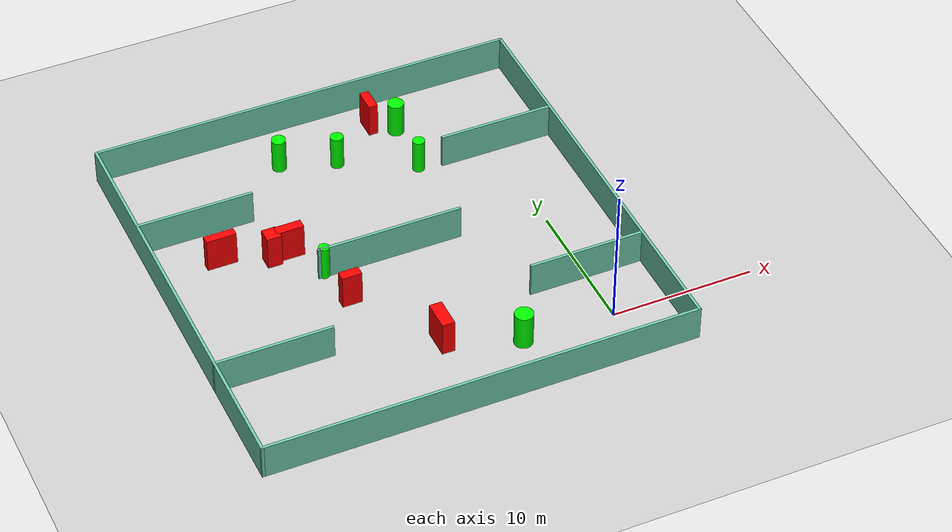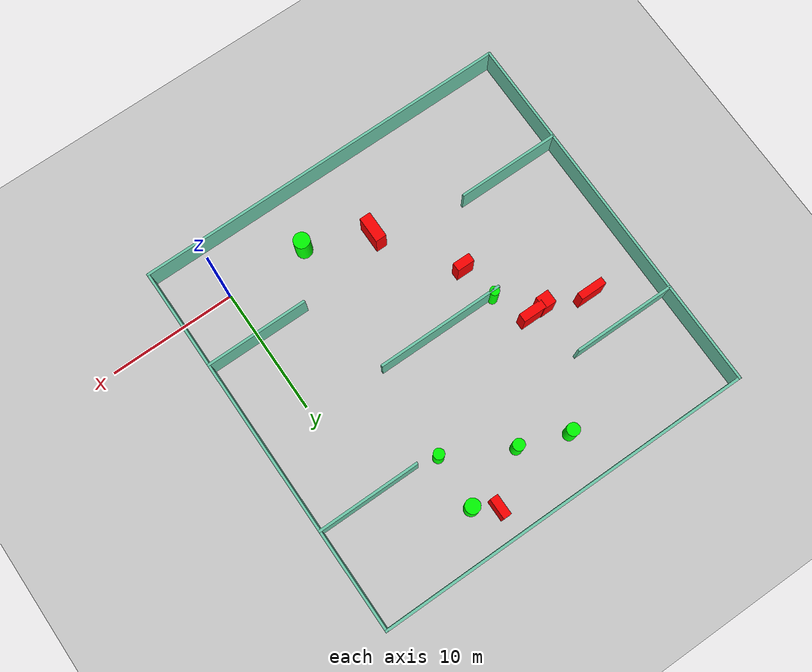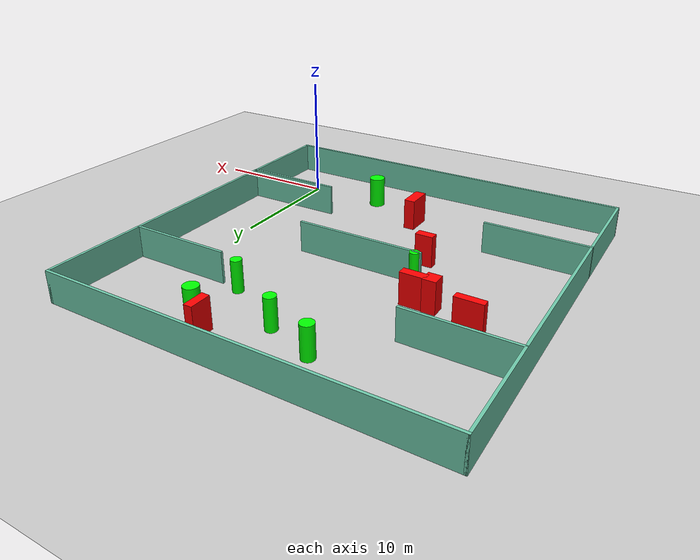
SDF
<sdf version="1.7">
 <world name="default">
  <light name="sun" type="directional">
   <pose>0 0 10 0 -0 0</pose>
   <diffuse>0.8 0.8 0.8 1</diffuse>
   <specular>0.2 0.2 0.2 1</specular>
   <attenuation>
    <range>1000</range>
    <constant>0.9</constant>
    <linear>0.01</linear>
    <quadratic>0.001</quadratic>
   </attenuation>
   <direction>-0.5 0.1 -0.9</direction>
   <spot><inner_angle>0</inner_angle><outer_angle>0</outer_angle><falloff>0</falloff></spot>
  </light>
  <model name="ground_plane">
   <static>1</static>
   <link name="link">
    <collision name="collision">
     <geometry><plane><normal>0 0 1</normal><size>100 100</size></plane></geometry>
     <surface>
      <contact><collide_bitmask>65535</collide_bitmask></contact>
      <friction><ode><mu>100</mu><mu2>50</mu2></ode></friction>
     </surface>
    </collision>
    <visual name="visual">
     <cast_shadows>0</cast_shadows>
     <geometry><plane><normal>0 0 1</normal><size>100 100</size></plane></geometry>
     <material>
      <script><uri>file://media/materials/scripts/gazebo.material</uri><name>Gazebo/Grey</name></script>
     </material>
    </visual>
   </link>
  </model>
  <gravity>0 0 -9.8</gravity>
  <magnetic_field>6e-06 2.3e-05 -4.2e-05</magnetic_field>
  <atmosphere type="adiabatic"/>
  <physics type="ode">
   <max_step_size>0.001</max_step_size>
   <real_time_factor>1</real_time_factor>
   <real_time_update_rate>1000</real_time_update_rate>
  </physics>
  <scene><ambient>0.4 0.4 0.4 1</ambient><background>0.7 0.7 0.7 1</background><shadows>1</shadows></scene>
  <spherical_coordinates>
   <surface_model>EARTH_WGS84</surface_model>
   <latitude_deg>0</latitude_deg>
   <longitude_deg>0</longitude_deg>
   <elevation>0</elevation>
   <heading_deg>0</heading_deg>
  </spherical_coordinates>
  <model name="my_base_walls">
   <link name="Wall_10">
    <collision name="Wall_10_Collision">
     <geometry><box><size>8.2 0.2 2.5</size></box></geometry>
     <pose>0 0 1.25 0 -0 0</pose>
    </collision>
    <visual name="Wall_10_Visual">
     <pose>0 0 1.25 0 -0 0</pose>
     <geometry><box><size>8.2 0.2 2.5</size></box></geometry>
     <material>
      <script><uri>file://media/materials/scripts/gazebo.material</uri><name>Gazebo/Grey</name></script>
      <ambient>0.435294 0.796078 0.67451 1</ambient>
     </material>
     <meta><layer>0</layer></meta>
    </visual>
    <pose>-11 -7 0 0 -0 0</pose>
   </link>
   <link name="Wall_12">
    <collision name="Wall_12_Collision">
     <geometry><box><size>8.2 0.2 2.5</size></box></geometry>
     <pose>0 0 1.25 0 -0 0</pose>
    </collision>
    <visual name="Wall_12_Visual">
     <pose>0 0 1.25 0 -0 0</pose>
     <geometry><box><size>8.2 0.2 2.5</size></box></geometry>
     <material>
      <script><uri>file://media/materials/scripts/gazebo.material</uri><name>Gazebo/Grey</name></script>
      <ambient>0.435294 0.796078 0.67451 1</ambient>
     </material>
     <meta><layer>0</layer></meta>
    </visual>
    <pose>-11 7 0 0 -0 0</pose>
   </link>
   <link name="Wall_14">
    <collision name="Wall_14_Collision">
     <geometry><box><size>8.2 0.2 2.5</size></box></geometry>
     <pose>0 0 1.25 0 -0 0</pose>
    </collision>
    <visual name="Wall_14_Visual">
     <pose>0 0 1.25 0 -0 0</pose>
     <geometry><box><size>8.2 0.2 2.5</size></box></geometry>
     <material>
      <script><uri>file://media/materials/scripts/gazebo.material</uri><name>Gazebo/Grey</name></script>
      <ambient>0.435294 0.796078 0.67451 1</ambient>
     </material>
     <meta><layer>0</layer></meta>
    </visual>
    <pose>11 7 0 0 -0 3.14159</pose>
   </link>
   <link name="Wall_16">
    <collision name="Wall_16_Collision">
     <geometry><box><size>10.2 0.2 2.5</size></box></geometry>
     <pose>0 0 1.25 0 -0 0</pose>
    </collision>
    <visual name="Wall_16_Visual">
     <pose>0 0 1.25 0 -0 0</pose>
     <geometry><box><size>10.2 0.2 2.5</size></box></geometry>
     <material>
      <script><uri>file://media/materials/scripts/gazebo.material</uri><name>Gazebo/Grey</name></script>
      <ambient>0.435294 0.796078 0.67451 1</ambient>
     </material>
     <meta><layer>0</layer></meta>
    </visual>
    <pose>0 0 0 0 -0 3.14159</pose>
   </link>
   <link name="Wall_2">
    <collision name="Wall_2_Collision">
     <geometry><box><size>30.2 0.2 2.5</size></box></geometry>
     <pose>0 0 1.25 0 -0 0</pose>
    </collision>
    <visual name="Wall_2_Visual">
     <pose>0 0 1.25 0 -0 0</pose>
     <geometry><box><size>30.2 0.2 2.5</size></box></geometry>
     <material>
      <script><uri>file://media/materials/scripts/gazebo.material</uri><name>Gazebo/Grey</name></script>
      <ambient>0.435294 0.796078 0.67451 1</ambient>
     </material>
     <meta><layer>0</layer></meta>
    </visual>
    <pose>0 -15 0 0 -0 3.14159</pose>
   </link>
   <link name="Wall_3">
    <collision name="Wall_3_Collision">
     <geometry><box><size>30.2 0.2 2.5</size></box></geometry>
     <pose>0 0 1.25 0 -0 0</pose>
    </collision>
    <visual name="Wall_3_Visual">
     <pose>0 0 1.25 0 -0 0</pose>
     <geometry><box><size>30.2 0.2 2.5</size></box></geometry>
     <material>
      <script><uri>file://media/materials/scripts/gazebo.material</uri><name>Gazebo/Grey</name></script>
      <ambient>0.435294 0.796078 0.67451 1</ambient>
     </material>
     <meta><layer>0</layer></meta>
    </visual>
    <pose>-15 0 0 0 -0 1.5708</pose>
   </link>
   <link name="Wall_4">
    <collision name="Wall_4_Collision">
     <geometry><box><size>30.2 0.2 2.5</size></box></geometry>
     <pose>0 0 1.25 0 -0 0</pose>
    </collision>
    <visual name="Wall_4_Visual">
     <pose>0 0 1.25 0 -0 0</pose>
     <geometry><box><size>30.2 0.2 2.5</size></box></geometry>
     <material>
      <script><uri>file://media/materials/scripts/gazebo.material</uri><name>Gazebo/Grey</name></script>
      <ambient>0.435294 0.796078 0.67451 1</ambient>
     </material>
     <meta><layer>0</layer></meta>
    </visual>
    <pose>0 15 0 0 -0 0</pose>
   </link>
   <link name="Wall_6">
    <collision name="Wall_6_Collision">
     <geometry><box><size>30.2 0.2 2.5</size></box></geometry>
     <pose>0 0 1.25 0 -0 0</pose>
    </collision>
    <visual name="Wall_6_Visual">
     <pose>0 0 1.25 0 -0 0</pose>
     <geometry><box><size>30.2 0.2 2.5</size></box></geometry>
     <material>
      <script><uri>file://media/materials/scripts/gazebo.material</uri><name>Gazebo/Grey</name></script>
      <ambient>0.435294 0.796078 0.67451 1</ambient>
     </material>
     <meta><layer>0</layer></meta>
    </visual>
    <pose>15 0 0 0 -0 1.5708</pose>
   </link>
   <link name="Wall_8">
    <collision name="Wall_8_Collision">
     <geometry><box><size>8.2 0.2 2.5</size></box></geometry>
     <pose>0 0 1.25 0 -0 0</pose>
    </collision>
    <visual name="Wall_8_Visual">
     <pose>0 0 1.25 0 -0 0</pose>
     <geometry><box><size>8.2 0.2 2.5</size></box></geometry>
     <material>
      <script><uri>file://media/materials/scripts/gazebo.material</uri><name>Gazebo/Grey</name></script>
      <ambient>0.435294 0.796078 0.67451 1</ambient>
     </material>
     <meta><layer>0</layer></meta>
    </visual>
    <pose>11 -7 0 0 -0 3.14159</pose>
   </link>
   <static>1</static>
   <pose>-11 11 0 0 -0 0</pose>
  </model>
  <model name="cylinder1">
   <static>1</static>
   <link name="link">
    <inertial>
     <mass>1</mass>
     <inertia><ixx>0.5</ixx><ixy>0</ixy><ixz>0</ixz><iyy>0.5</iyy><iyz>0</iyz><izz>1</izz></inertia>
    </inertial>
    <collision name="collision">
     <geometry><cylinder><radius>0.4205639386313128</radius><length>2.5</length></cylinder></geometry>
    </collision>
    <visual name="visual">
     <geometry><cylinder><radius>0.4205639386313128</radius><length>2.5</length></cylinder></geometry>
     <material>
      <ambient>0 1 0 1</ambient>
      <diffuse>0 1 0 1</diffuse>
      <specular>0.1 0.1 0.1 1</specular>
      <emissive>0 0 0 0</emissive>
     </material>
    </visual>
   </link>
   <pose>-5.664906811855879 18.342129336857866 1.25 0 0 0</pose>
  </model>
  <model name="cylinder2">
   <static>1</static>
   <link name="link">
    <inertial>
     <mass>1</mass>
     <inertia><ixx>0.5</ixx><ixy>0</ixy><ixz>0</ixz><iyy>0.5</iyy><iyz>0</iyz><izz>1</izz></inertia>
    </inertial>
    <collision name="collision">
     <geometry><cylinder><radius>0.36743642470945576</radius><length>2.5</length></cylinder></geometry>
    </collision>
    <visual name="visual">
     <geometry><cylinder><radius>0.36743642470945576</radius><length>2.5</length></cylinder></geometry>
     <material>
      <ambient>0 1 0 1</ambient>
      <diffuse>0 1 0 1</diffuse>
      <specular>0.1 0.1 0.1 1</specular>
      <emissive>0 0 0 0</emissive>
     </material>
    </visual>
   </link>
   <pose>-15.610635866786 11.11224617628008 1.25 0 0 0</pose>
  </model>
  <model name="cylinder3">
   <static>1</static>
   <link name="link">
    <inertial>
     <mass>1</mass>
     <inertia><ixx>0.5</ixx><ixy>0</ixy><ixz>0</ixz><iyy>0.5</iyy><iyz>0</iyz><izz>1</izz></inertia>
    </inertial>
    <collision name="collision">
     <geometry><cylinder><radius>0.6387010330572106</radius><length>2.5</length></cylinder></geometry>
    </collision>
    <visual name="visual">
     <geometry><cylinder><radius>0.6387010330572106</radius><length>2.5</length></cylinder></geometry>
     <material>
      <ambient>0 1 0 1</ambient>
      <diffuse>0 1 0 1</diffuse>
      <specular>0.1 0.1 0.1 1</specular>
      <emissive>0 0 0 0</emissive>
     </material>
    </visual>
   </link>
   <pose>-6.3981393806121325 0.1371236481526541 1.25 0 0 0</pose>
  </model>
  <model name="cylinder4">
   <static>1</static>
   <link name="link">
    <inertial>
     <mass>1</mass>
     <inertia><ixx>0.5</ixx><ixy>0</ixy><ixz>0</ixz><iyy>0.5</iyy><iyz>0</iyz><izz>1</izz></inertia>
    </inertial>
    <collision name="collision">
     <geometry><cylinder><radius>0.49794016591902346</radius><length>2.5</length></cylinder></geometry>
    </collision>
    <visual name="visual">
     <geometry><cylinder><radius>0.49794016591902346</radius><length>2.5</length></cylinder></geometry>
     <material>
      <ambient>0 1 0 1</ambient>
      <diffuse>0 1 0 1</diffuse>
      <specular>0.1 0.1 0.1 1</specular>
      <emissive>0 0 0 0</emissive>
     </material>
    </visual>
   </link>
   <pose>-14.29390490018737 22.278402033695755 1.25 0 0 0</pose>
  </model>
  <model name="cylinder5">
   <static>1</static>
   <link name="link">
    <inertial>
     <mass>1</mass>
     <inertia><ixx>0.5</ixx><ixy>0</ixy><ixz>0</ixz><iyy>0.5</iyy><iyz>0</iyz><izz>1</izz></inertia>
    </inertial>
    <collision name="collision">
     <geometry><cylinder><radius>0.45933887770734566</radius><length>2.5</length></cylinder></geometry>
    </collision>
    <visual name="visual">
     <geometry><cylinder><radius>0.45933887770734566</radius><length>2.5</length></cylinder></geometry>
     <material>
      <ambient>0 1 0 1</ambient>
      <diffuse>0 1 0 1</diffuse>
      <specular>0.1 0.1 0.1 1</specular>
      <emissive>0 0 0 0</emissive>
     </material>
    </visual>
   </link>
   <pose>-10.567849529596302 20.970947536098898 1.25 0 0 0</pose>
  </model>
  <model name="cylinder6">
   <static>1</static>
   <link name="link">
    <inertial>
     <mass>1</mass>
     <inertia><ixx>0.5</ixx><ixy>0</ixy><ixz>0</ixz><iyy>0.5</iyy><iyz>0</iyz><izz>1</izz></inertia>
    </inertial>
    <collision name="collision">
     <geometry><cylinder><radius>0.574609203874773</radius><length>2.5</length></cylinder></geometry>
    </collision>
    <visual name="visual">
     <geometry><cylinder><radius>0.574609203874773</radius><length>2.5</length></cylinder></geometry>
     <material>
      <ambient>0 1 0 1</ambient>
      <diffuse>0 1 0 1</diffuse>
      <specular>0.1 0.1 0.1 1</specular>
      <emissive>0 0 0 0</emissive>
     </material>
    </visual>
   </link>
   <pose>-5.509010972296327 22.573593040359384 1.25 0 0 0</pose>
  </model>
  <model name="box1">
   <static>1</static>
   <link name="link">
    <inertial>
     <mass>1</mass>
     <inertia><ixx>0.083</ixx><ixy>0</ixy><ixz>0</ixz><iyy>0.083</iyy><iyz>0</iyz><izz>0.083</izz></inertia>
    </inertial>
    <collision name="collision">
     <geometry><box><size>0.6504059005115395 1.6411606409553803 2.5</size></box></geometry>
    </collision>
    <visual name="visual">
     <geometry><box><size>0.6504059005115395 1.6411606409553803 2.5</size></box></geometry>
     <material>
      <ambient>1 0 0 1</ambient>
      <diffuse>1 0 0 1</diffuse>
      <specular>0.1 0.1 0.1 1</specular>
      <emissive>0 0 0 0</emissive>
     </material>
    </visual>
    <sensor name="my_contact" type="contact">
     <contact><collision>box_collision</collision><topic>__default_topic__</topic></contact>
    </sensor>
   </link>
   <pose>-7.050735502179512 23.69139377295803 1.25 0 0 0</pose>
  </model>
  <model name="box2">
   <static>1</static>
   <link name="link">
    <inertial>
     <mass>1</mass>
     <inertia><ixx>0.083</ixx><ixy>0</ixy><ixz>0</ixz><iyy>0.083</iyy><iyz>0</iyz><izz>0.083</izz></inertia>
    </inertial>
    <collision name="collision">
     <geometry><box><size>1.8966255512125023 0.681525747947772 2.5</size></box></geometry>
    </collision>
    <visual name="visual">
     <geometry><box><size>1.8966255512125023 0.681525747947772 2.5</size></box></geometry>
     <material>
      <ambient>1 0 0 1</ambient>
      <diffuse>1 0 0 1</diffuse>
      <specular>0.1 0.1 0.1 1</specular>
      <emissive>0 0 0 0</emissive>
     </material>
    </visual>
    <sensor name="my_contact" type="contact">
     <contact><collision>box_collision</collision><topic>__default_topic__</topic></contact>
    </sensor>
   </link>
   <pose>-16.977371823866342 13.844318501077488 1.25 0 0 0</pose>
  </model>
  <model name="box3">
   <static>1</static>
   <link name="link">
    <inertial>
     <mass>1</mass>
     <inertia><ixx>0.083</ixx><ixy>0</ixy><ixz>0</ixz><iyy>0.083</iyy><iyz>0</iyz><izz>0.083</izz></inertia>
    </inertial>
    <collision name="collision">
     <geometry><box><size>0.878106572672791 2.0892639315636377 2.5</size></box></geometry>
    </collision>
    <visual name="visual">
     <geometry><box><size>0.878106572672791 2.0892639315636377 2.5</size></box></geometry>
     <material>
      <ambient>1 0 0 1</ambient>
      <diffuse>1 0 0 1</diffuse>
      <specular>0.1 0.1 0.1 1</specular>
      <emissive>0 0 0 0</emissive>
     </material>
    </visual>
    <sensor name="my_contact" type="contact">
     <contact><collision>box_collision</collision><topic>__default_topic__</topic></contact>
    </sensor>
   </link>
   <pose>-11.179486517353823 2.2430828416656716 1.25 0 0 0</pose>
  </model>
  <model name="box4">
   <static>1</static>
   <link name="link">
    <inertial>
     <mass>1</mass>
     <inertia><ixx>0.083</ixx><ixy>0</ixy><ixz>0</ixz><iyy>0.083</iyy><iyz>0</iyz><izz>0.083</izz></inertia>
    </inertial>
    <collision name="collision">
     <geometry><box><size>2.0989144039415844 0.5805945896596709 2.5</size></box></geometry>
    </collision>
    <visual name="visual">
     <geometry><box><size>2.0989144039415844 0.5805945896596709 2.5</size></box></geometry>
     <material>
      <ambient>1 0 0 1</ambient>
      <diffuse>1 0 0 1</diffuse>
      <specular>0.1 0.1 0.1 1</specular>
      <emissive>0 0 0 0</emissive>
     </material>
    </visual>
    <sensor name="my_contact" type="contact">
     <contact><collision>box_collision</collision><topic>__default_topic__</topic></contact>
    </sensor>
   </link>
   <pose>-21.393507945316973 14.917330182985253 1.25 0 0 0</pose>
  </model>
  <model name="box5">
   <static>1</static>
   <link name="link">
    <inertial>
     <mass>1</mass>
     <inertia><ixx>0.083</ixx><ixy>0</ixy><ixz>0</ixz><iyy>0.083</iyy><iyz>0</iyz><izz>0.083</izz></inertia>
    </inertial>
    <collision name="collision">
     <geometry><box><size>1.387848162833135 0.6761391274886311 2.5</size></box></geometry>
    </collision>
    <visual name="visual">
     <geometry><box><size>1.387848162833135 0.6761391274886311 2.5</size></box></geometry>
     <material>
      <ambient>1 0 0 1</ambient>
      <diffuse>1 0 0 1</diffuse>
      <specular>0.1 0.1 0.1 1</specular>
      <emissive>0 0 0 0</emissive>
     </material>
    </visual>
    <sensor name="my_contact" type="contact">
     <contact><collision>box_collision</collision><topic>__default_topic__</topic></contact>
    </sensor>
   </link>
   <pose>-15.024600133338074 8.121464142349554 1.25 0 0 0</pose>
  </model>
  <model name="box6">
   <static>1</static>
   <link name="link">
    <inertial>
     <mass>1</mass>
     <inertia><ixx>0.083</ixx><ixy>0</ixy><ixz>0</ixz><iyy>0.083</iyy><iyz>0</iyz><izz>0.083</izz></inertia>
    </inertial>
    <collision name="collision">
     <geometry><box><size>1.03975406070598 1.030879313581138 2.5</size></box></geometry>
    </collision>
    <visual name="visual">
     <geometry><box><size>1.03975406070598 1.030879313581138 2.5</size></box></geometry>
     <material>
      <ambient>1 0 0 1</ambient>
      <diffuse>1 0 0 1</diffuse>
      <specular>0.1 0.1 0.1 1</specular>
      <emissive>0 0 0 0</emissive>
     </material>
    </visual>
    <sensor name="my_contact" type="contact">
     <contact><collision>box_collision</collision><topic>__default_topic__</topic></contact>
    </sensor>
   </link>
   <pose>-18.228499497122932 13.724043677797429 1.25 0 0 0</pose>
  </model>
 </world>
</sdf>
